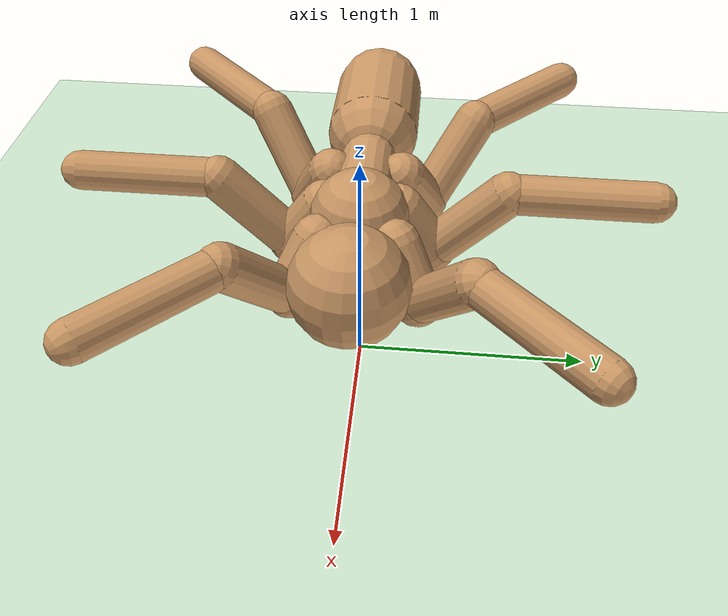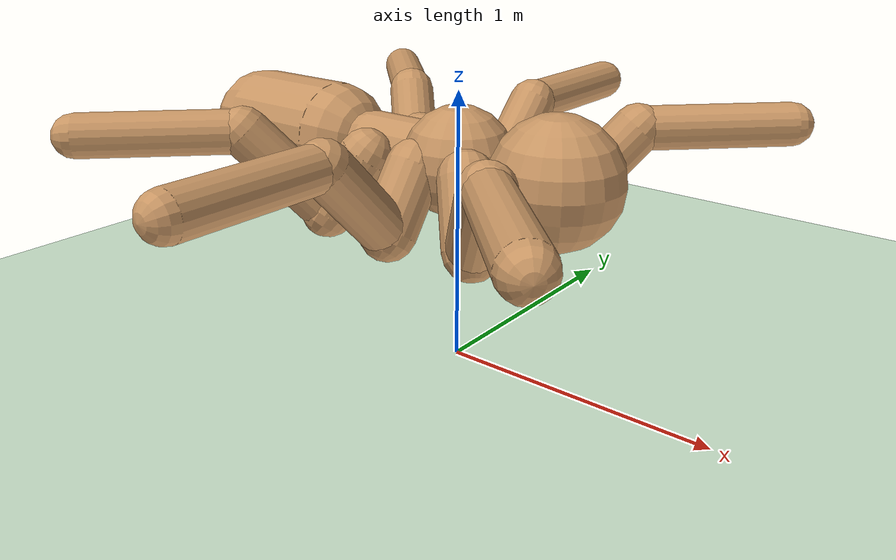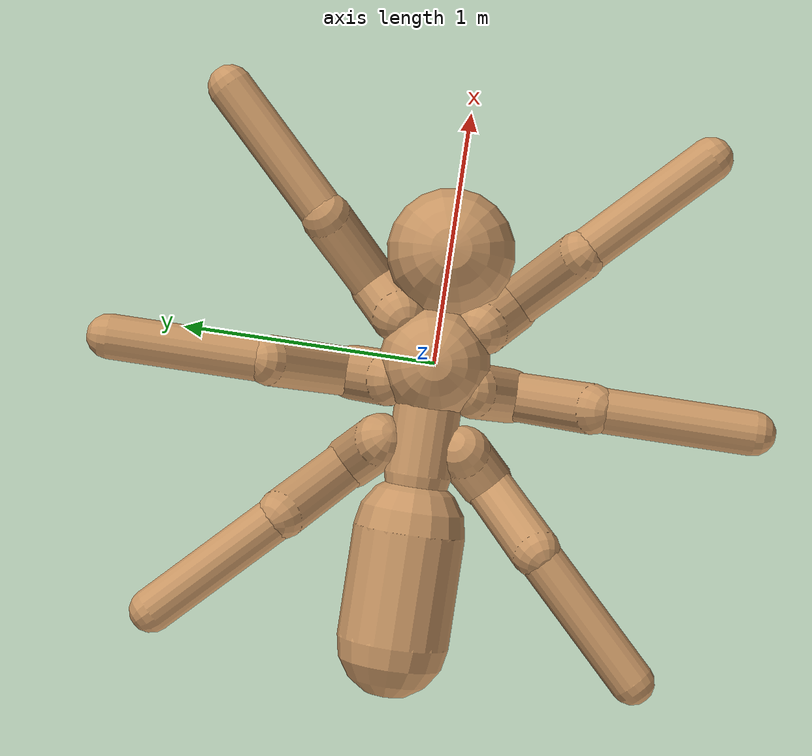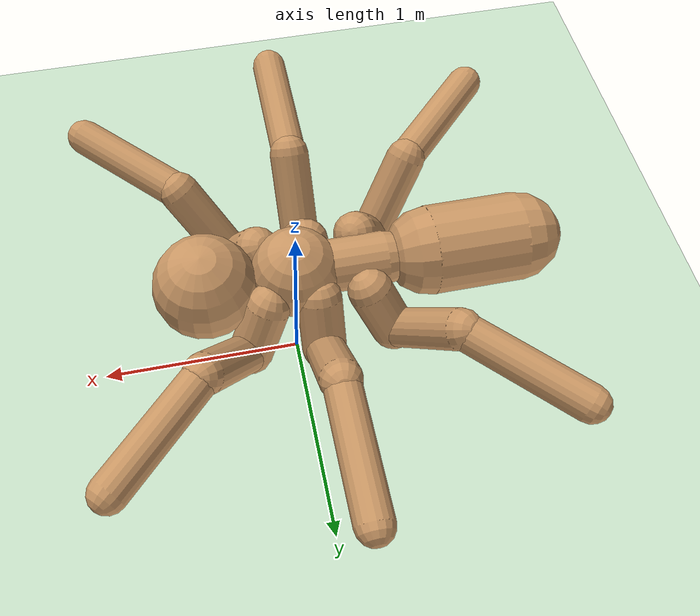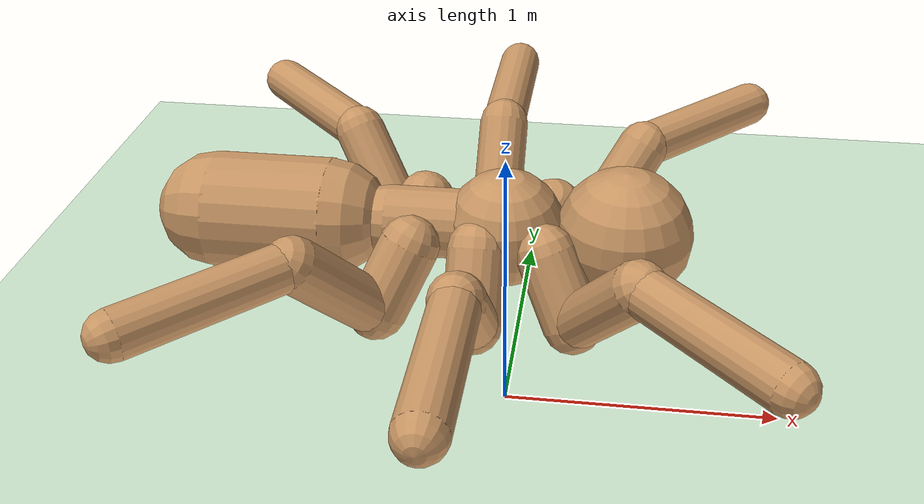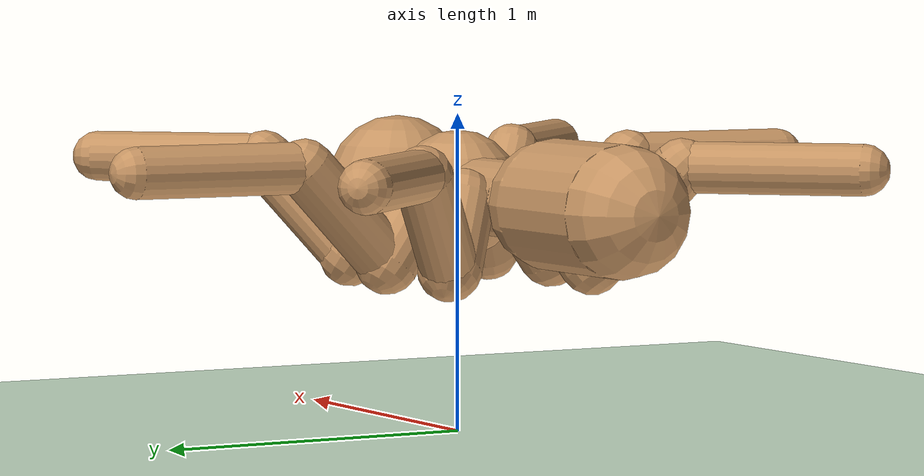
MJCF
<mujoco model="ant">
	<compiler angle="degree" coordinate="local" inertiafromgeom="true"/>
	<option integrator="RK4" timestep="0.002"/>
	<custom>
		<numeric data="0.0 0.0 0.55 1.0 0.0 0.0 0.0 0.0 1.0 0.0 -1.0 0.0 -1.0 0.0 1.0" name="init_qpos"/>
	</custom>
	<default>
		<joint armature="1" damping="1" limited="true"/>
		<geom conaffinity="0" condim="3" density="5.0" friction="1 0.5 0.5" margin="0.01" rgba="0.8 0.6 0.4 1"/>
	</default>
	<asset>
		<texture builtin="gradient" height="100" rgb1="1 1 1" rgb2="0 0 0" type="skybox" width="100"/>
		<texture builtin="flat" height="1278" mark="cross" markrgb="1 1 1" name="texgeom" random="0.01" rgb1="0.8 0.6 0.4" rgb2="0.8 0.6 0.4" type="cube" width="127"/>
		<texture builtin="checker" height="100" name="texplane" rgb1="0 0 0" rgb2="0.8 0.8 0.8" type="2d" width="100"/>
		<material name="MatPlane" reflectance="0.5" shininess="1" specular="1" texrepeat="60 60" texture="texplane"/>
		<material name="geom" texture="texgeom" texuniform="true"/>
	</asset>
	<worldbody>
		<light cutoff="100" diffuse="1 1 1" dir="-0 0 -1.3" directional="true" exponent="1" pos="0 0 1.3" specular=".1 .1 .1"/>
		<geom conaffinity="1" condim="3" material="MatPlane" name="floor" pos="0 0 0" rgba="0.8 0.9 0.8 1" size="40 40 40"  type="plane"/>
		<body name="torso" pos="0 0 0.75">

			<!--몸통-->
			<geom name="torso_geom" fromto ="-0.4 0.0 0 0 0.0 0.0" size="0.12" type="capsule"/>
			<geom name="torso_geom2" pos ="0 0 0" size="0.2" type="sphere"/>

			<!--머리-->
			<body name="head" pos="0 0 0">
				<geom name="head" pos ="0.4 0 0" size="0.23" type="sphere"/>

			</body>

			<body name="tail" pos="-0.4 0 0">
				<geom name="tail" fromto ="-0.6 0 0 -0.2 0 0.0" size="0.2" type="capsule"/>
			</body>

			<joint armature="0" damping="0" limited="false" margin="0.01" name="root" pos="0 0 0" type="free"/>

			<!--다리1-->
			<body name="first_leg" pos="0.15 0.15 0">
				<geom fromto="0.0 0.0 0.0 0.1 0.1 -0.2" name="aux_1_geom" size="0.1" type="capsule"/>

				<body name="aux_1" pos="0.1 0.1 -0.2">
          <joint axis="0 0 1" name="hip_1" pos="0.0 0.0 0.0" range="-30 30" type="hinge"/>
					<geom fromto="0.0 0.0 0.0 0.2 0.2 0.3" name="first_leg_geom" size="0.09" type="capsule"/>

					<body pos="0.2 0.2 0.3">
						<joint axis="-1 1 0" name="ankle_1" pos="0.0 0.0 0.0" range="30 70" type="hinge"/>
						<geom fromto="0.0 0.0 0.0 0.4 0.4 0.0" name="first_ankle_geom" size="0.08" type="capsule"/>
					</body>
				</body>
			</body>

			<!--다리2-->
			<body name="second_leg" pos="-0.075 0.15 0">
        <geom fromto="0.0 0.0 0.0 0.0 0.14142 -0.2" name="aux_2_geom" size="0.1" type="capsule"/>

        <body name="aux_2" pos="0.0 0.14142 -0.2">
          <joint axis="0 0 1" name="hip_2" pos="0.0 0 0.0" range="-30 30" type="hinge"/>
					<geom fromto="0.0 0.0 0.0 0.0 0.28284 0.3" name="second_leg_geom" size="0.09" type="capsule"/>

					<body pos="0.0 0.28284 0.3">
						<joint axis="1 0 0" name="ankle_2" pos="0.0 0 0.0" range="-70 -30" type="hinge"/>
						<geom fromto="0.0 0.56568 0.0 0 0 0.0" name="second_ankle_geom" size="0.08" type="capsule"/>
					</body>
				</body>
			</body>

			<!--다리3-->
			<body name="third_leg" pos="-0.3 0.15 0">
        <geom fromto="0.0 0.0 0.0 -0.1 0.1 -0.2" name="aux_3_geom" size="0.1" type="capsule"/>

        <body name="aux_3" pos="-0.1 0.1 -0.2">
          <joint axis="0 0 1" name="hip_3" pos="0.0 0.0 0.0" range="-30 30" type="hinge"/>
          <geom fromto="0.0 0.0 0.0 -0.2 0.2 0.3" name="third_leg_geom" size="0.09" type="capsule"/>

					<body pos="-0.2 0.2 0.3">
						<joint axis="1 1 0" name="ankle_3" pos="0.0 0.0 0.0" range="-70 -30" type="hinge"/>
						<geom fromto="0.0 0.0 0.0 -0.4 0.4 0.0" name="third_ankle_geom" size="0.08" type="capsule"/>
					</body>
				</body>
			</body>

			<!--다리4-->
			<body name="fourth_leg" pos="-0.3 -0.15 0">
        <geom fromto="0.0 0.0 0.0 -0.1 -0.1 -0.2" name="aux_4_geom" size="0.1" type="capsule"/>

        <body name="aux_4" pos="-0.1 -0.1 -0.2">
          <joint axis="0 0 1" name="hip_4" pos="0.0 0.0 0.0" range="-30 30" type="hinge"/>
					<geom fromto="0.0 0.0 0.0 -0.2 -0.2 0.3" name="fourth_leg_geom" size="0.09" type="capsule"/>

					<body pos="-0.2 -0.2 0.3">
						<joint axis="-1 1 0" name="ankle_4" pos="0.0 0.0 0.0" range="-70 -30" type="hinge"/>
						<geom fromto="0.0 0.0 0.0 -0.4 -0.4 0.0" name="fourth_ankle_geom" size="0.08" type="capsule"/>
					</body>
				</body>
			</body>

			<!--다리 5-->
			<body name="fifth_leg" pos="-0.075 -0.15 0">
        <geom fromto="0.0 0 0.0 0 -0.14142 -0.2" name="aux_5_geom" size="0.1" type="capsule"/>

        <body name="aux_5" pos="0 -0.14142 -0.2">
          <joint axis="0 0 1" name="hip_5" pos="0.0 0 0.0" range="-30 30" type="hinge"/>
					<geom fromto="0.0 0 0.0 0 -0.28284 0.3" name="fifth_leg_geom" size="0.09" type="capsule"/>

					<body pos="0 -0.28284 0.3">
						<joint axis="1 0 0" name="ankle_5" pos="0.0 0.0 0.0" range="30 70" type="hinge"/>
						<geom fromto="0.0 -0.56568 0.0 0 0 0.0" name="fifth_ankle_geom" size="0.08" type="capsule"/>
					</body>
				</body>
			</body>

			<!--다리 6-->
			<body name="eighth_leg" pos="0.15 -0.15 0">
				<geom fromto="0.0 0.0 0.0 0.1 -0.1 -0.2" name="aux_6_geom" size="0.1" type="capsule"/>

				<body name="aux_6" pos="0.1 -0.1 -0.2">
          <joint axis="0 0 1" name="hip_6" pos="0.0 0.0 0.0" range="-30 30" type="hinge"/>
					<geom fromto="0.0 0.0 0.0 0.2 -0.2 0.3" name="sixth_leg_geom" size="0.09" type="capsule"/>

					<body pos="0.2 -0.2 0.3">
						<joint axis="1 1 0" name="ankle_6" pos="0.0 0.0 0.0" range="30 70" type="hinge"/>
						<geom fromto="0.0 0.0 0.0 0.4 -0.4 0.0" name="sixth_ankle_geom" size="0.08" type="capsule"/>
					</body>
				</body>
			</body>
		</body>
	</worldbody>

	<actuator>

		<motor ctrllimited="true" ctrlrange="-1.0 1.0" joint="hip_1" gear="150"/>
		<motor ctrllimited="true" ctrlrange="-1.0 1.0" joint="ankle_1" gear="150"/>

		<motor ctrllimited="true" ctrlrange="-1.0 1.0" joint="hip_6" gear="150"/>
		<motor ctrllimited="true" ctrlrange="-1.0 1.0" joint="ankle_6" gear="150"/>

		<motor ctrllimited="true" ctrlrange="-1.0 1.0" joint="hip_2" gear="150"/>
		<motor ctrllimited="true" ctrlrange="-1.0 1.0" joint="ankle_2" gear="150"/>

		<motor ctrllimited="true" ctrlrange="-1.0 1.0" joint="hip_5" gear="150"/>
		<motor ctrllimited="true" ctrlrange="-1.0 1.0" joint="ankle_5" gear="150"/>

		<motor ctrllimited="true" ctrlrange="-1.0 1.0" joint="hip_3" gear="150"/>
		<motor ctrllimited="true" ctrlrange="-1.0 1.0" joint="ankle_3" gear="150"/>

		<motor ctrllimited="true" ctrlrange="-1.0 1.0" joint="hip_4" gear="150"/>
		<motor ctrllimited="true" ctrlrange="-1.0 1.0" joint="ankle_4" gear="150"/>

	</actuator>

</mujoco>
